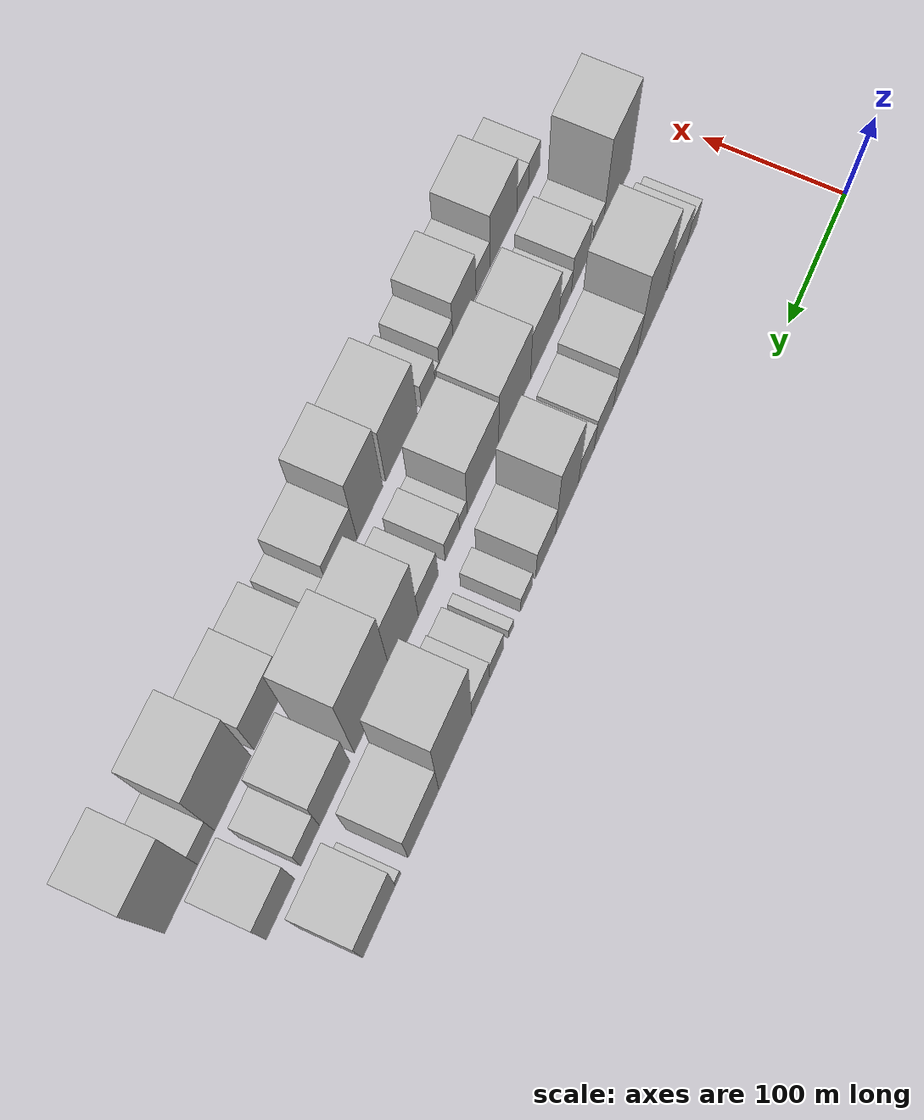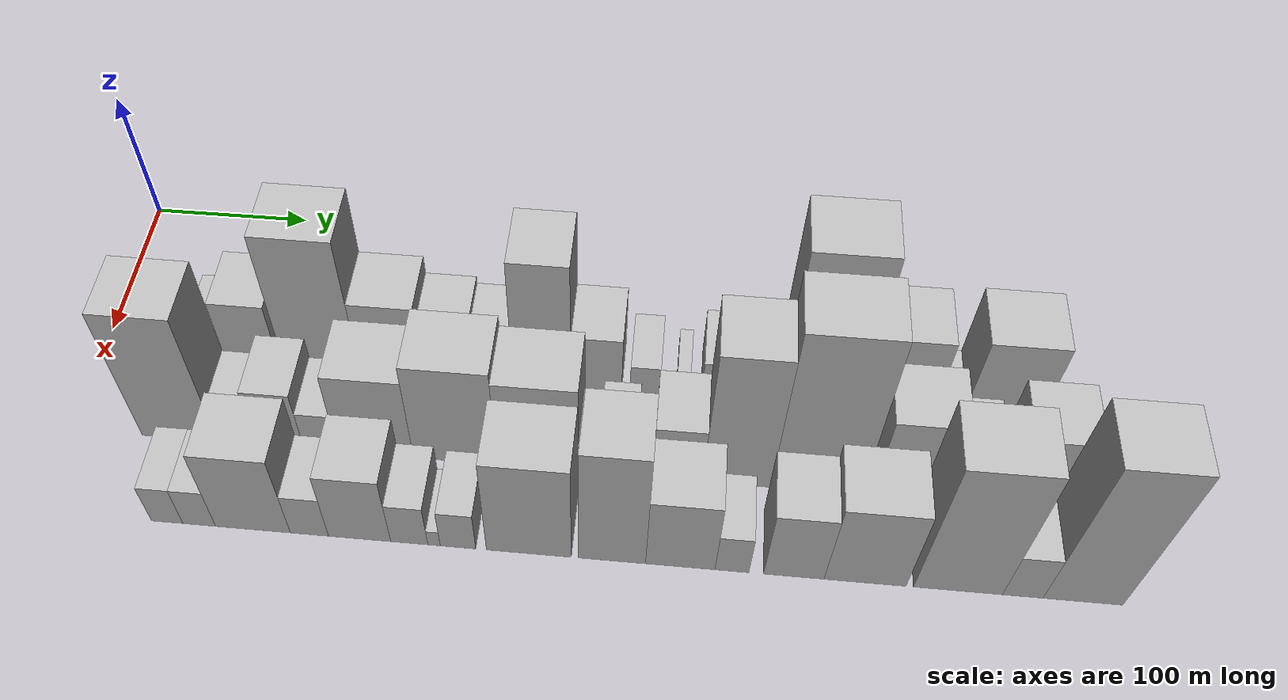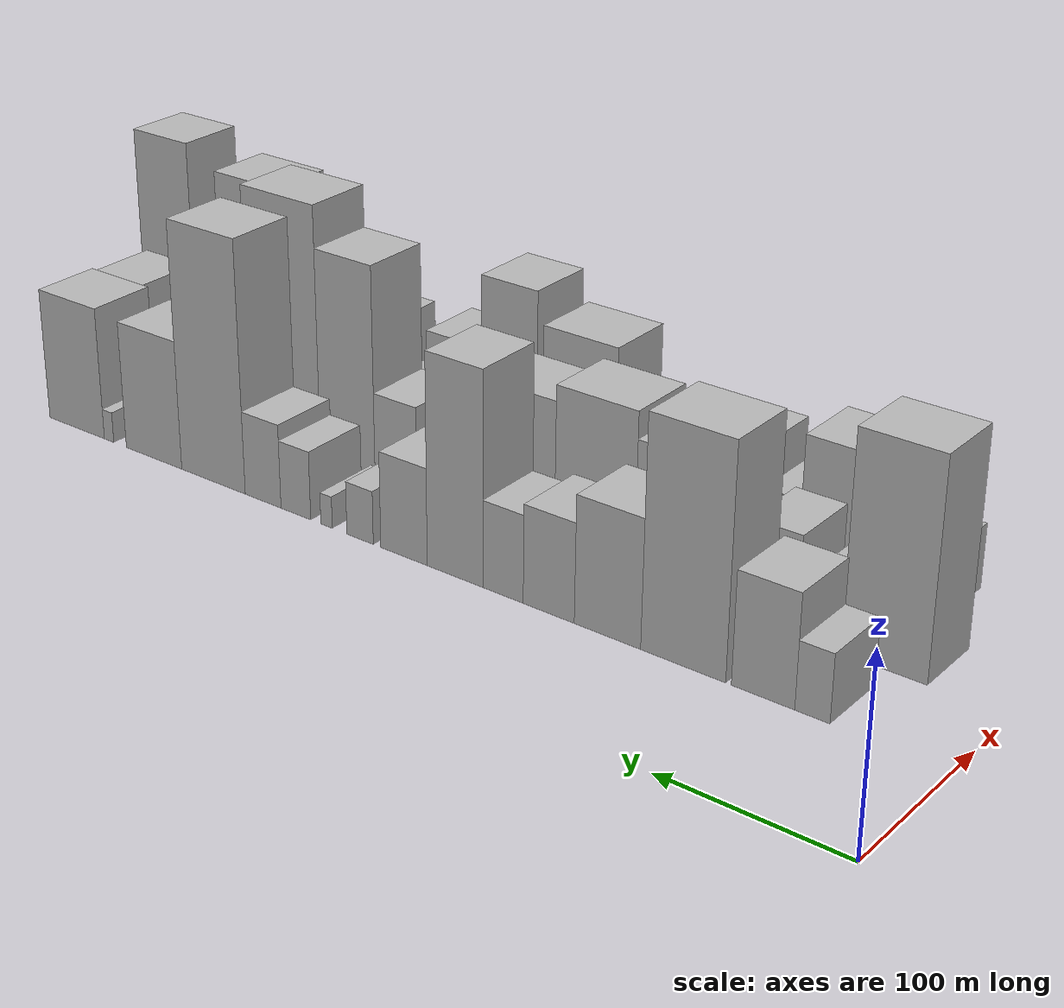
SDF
<sdf version="1.6">
 <world name="default">
  <model name="building_16">
   <static>1</static>
   <pose>100.0000 69.0831 0 0.000000 0.000000 0.000000</pose>
   <link name="link">
    <pose>0 0 18.00 0 0 0</pose>
    <collision name="collision"><geometry><box><size>40.0000 18.0495 36.0000</size></box></geometry></collision>
    <visual name="visual">
     <cast_shadows>0</cast_shadows>
     <geometry><box><size>40.0000 18.0495 36.0000</size></box></geometry>
     <material>
      <script>
       <uri>model://HANNAS_wall/materials/scripts</uri>
       <uri>model://HANNAS_wall/materials/textures</uri>
       <name>vrc/HANNAS_wall</name>
      </script>
     </material>
    </visual>
   </link>
  </model>
  <model name="building_17">
   <static>1</static>
   <pose>100.0000 94.7705 0 0.000000 0.000000 0.000000</pose>
   <link name="link">
    <pose>0 0 30.00 0 0 0</pose>
    <collision name="collision"><geometry><box><size>40.0000 33.3253 60.0000</size></box></geometry></collision>
    <visual name="visual">
     <cast_shadows>0</cast_shadows>
     <geometry><box><size>40.0000 33.3253 60.0000</size></box></geometry>
     <material>
      <script>
       <uri>model://HANNAS_wall/materials/scripts</uri>
       <uri>model://HANNAS_wall/materials/textures</uri>
       <name>vrc/HANNAS_wall</name>
      </script>
     </material>
    </visual>
   </link>
  </model>
  <model name="building_18">
   <static>1</static>
   <pose>100.0000 137.8663 0 0.000000 0.000000 0.000000</pose>
   <link name="link">
    <pose>0 0 61.50 0 0 0</pose>
    <collision name="collision"><geometry><box><size>40.0000 46.8662 123.0000</size></box></geometry></collision>
    <visual name="visual">
     <cast_shadows>0</cast_shadows>
     <geometry><box><size>40.0000 46.8662 123.0000</size></box></geometry>
     <material>
      <script>
       <uri>model://HANNAS_wall/materials/scripts</uri>
       <uri>model://HANNAS_wall/materials/textures</uri>
       <name>vrc/HANNAS_wall</name>
      </script>
     </material>
    </visual>
   </link>
  </model>
  <model name="building_19">
   <static>1</static>
   <pose>100.0000 180.4211 0 0.000000 0.000000 0.000000</pose>
   <link name="link">
    <pose>0 0 34.50 0 0 0</pose>
    <collision name="collision"><geometry><box><size>40.0000 38.2435 69.0000</size></box></geometry></collision>
    <visual name="visual">
     <cast_shadows>0</cast_shadows>
     <geometry><box><size>40.0000 38.2435 69.0000</size></box></geometry>
     <material>
      <script>
       <uri>model://HANNAS_wall/materials/scripts</uri>
       <uri>model://HANNAS_wall/materials/textures</uri>
       <name>vrc/HANNAS_wall</name>
      </script>
     </material>
    </visual>
   </link>
  </model>
  <model name="building_20">
   <static>1</static>
   <pose>100.0000 214.7776 0 0.000000 0.000000 0.000000</pose>
   <link name="link">
    <pose>0 0 27.00 0 0 0</pose>
    <collision name="collision"><geometry><box><size>40.0000 30.4695 54.0000</size></box></geometry></collision>
    <visual name="visual">
     <cast_shadows>0</cast_shadows>
     <geometry><box><size>40.0000 30.4695 54.0000</size></box></geometry>
     <material>
      <script>
       <uri>model://HANNAS_wall/materials/scripts</uri>
       <uri>model://HANNAS_wall/materials/textures</uri>
       <name>vrc/HANNAS_wall</name>
      </script>
     </material>
    </visual>
   </link>
  </model>
  <model name="building_21">
   <static>1</static>
   <pose>100.0000 242.4147 0 0.000000 0.000000 0.000000</pose>
   <link name="link">
    <pose>0 0 24.00 0 0 0</pose>
    <collision name="collision"><geometry><box><size>40.0000 24.8045 48.0000</size></box></geometry></collision>
    <visual name="visual">
     <cast_shadows>0</cast_shadows>
     <geometry><box><size>40.0000 24.8045 48.0000</size></box></geometry>
     <material>
      <script>
       <uri>model://HANNAS_wall/materials/scripts</uri>
       <uri>model://HANNAS_wall/materials/textures</uri>
       <name>vrc/HANNAS_wall</name>
      </script>
     </material>
    </visual>
   </link>
  </model>
  <model name="building_22">
   <static>1</static>
   <pose>100.0000 272.4213 0 0.000000 0.000000 0.000000</pose>
   <link name="link">
    <pose>0 0 58.50 0 0 0</pose>
    <collision name="collision"><geometry><box><size>40.0000 35.2088 117.0000</size></box></geometry></collision>
    <visual name="visual">
     <cast_shadows>0</cast_shadows>
     <geometry><box><size>40.0000 35.2088 117.0000</size></box></geometry>
     <material>
      <script>
       <uri>model://HANNAS_wall/materials/scripts</uri>
       <uri>model://HANNAS_wall/materials/textures</uri>
       <name>vrc/HANNAS_wall</name>
      </script>
     </material>
    </visual>
   </link>
  </model>
  <model name="building_23">
   <static>1</static>
   <pose>100.0000 305.1932 0 0.000000 0.000000 0.000000</pose>
   <link name="link">
    <pose>0 0 27.00 0 0 0</pose>
    <collision name="collision"><geometry><box><size>40.0000 30.3350 54.0000</size></box></geometry></collision>
    <visual name="visual">
     <cast_shadows>0</cast_shadows>
     <geometry><box><size>40.0000 30.3350 54.0000</size></box></geometry>
     <material>
      <script>
       <uri>model://HANNAS_wall/materials/scripts</uri>
       <uri>model://HANNAS_wall/materials/textures</uri>
       <name>vrc/HANNAS_wall</name>
      </script>
     </material>
    </visual>
   </link>
  </model>
  <model name="building_24">
   <static>1</static>
   <pose>100.0000 334.2420 0 0.000000 0.000000 0.000000</pose>
   <link name="link">
    <pose>0 0 15.00 0 0 0</pose>
    <collision name="collision"><geometry><box><size>40.0000 17.7624 30.0000</size></box></geometry></collision>
    <visual name="visual">
     <cast_shadows>0</cast_shadows>
     <geometry><box><size>40.0000 17.7624 30.0000</size></box></geometry>
     <material>
      <script>
       <uri>model://HANNAS_wall/materials/scripts</uri>
       <uri>model://HANNAS_wall/materials/textures</uri>
       <name>vrc/HANNAS_wall</name>
      </script>
     </material>
    </visual>
   </link>
  </model>
  <model name="building_25">
   <static>1</static>
   <pose>100.0000 357.0527 0 0.000000 0.000000 0.000000</pose>
   <link name="link">
    <pose>0 0 9.00 0 0 0</pose>
    <collision name="collision"><geometry><box><size>40.0000 7.8591 18.0000</size></box></geometry></collision>
    <visual name="visual">
     <cast_shadows>0</cast_shadows>
     <geometry><box><size>40.0000 7.8591 18.0000</size></box></geometry>
     <material>
      <script>
       <uri>model://HANNAS_wall/materials/scripts</uri>
       <uri>model://HANNAS_wall/materials/textures</uri>
       <name>vrc/HANNAS_wall</name>
      </script>
     </material>
    </visual>
   </link>
  </model>
  <model name="building_26">
   <static>1</static>
   <pose>100.0000 378.4067 0 0.000000 0.000000 0.000000</pose>
   <link name="link">
    <pose>0 0 19.50 0 0 0</pose>
    <collision name="collision"><geometry><box><size>40.0000 20.8488 39.0000</size></box></geometry></collision>
    <visual name="visual">
     <cast_shadows>0</cast_shadows>
     <geometry><box><size>40.0000 20.8488 39.0000</size></box></geometry>
     <material>
      <script>
       <uri>model://HANNAS_wall/materials/scripts</uri>
       <uri>model://HANNAS_wall/materials/textures</uri>
       <name>vrc/HANNAS_wall</name>
      </script>
     </material>
    </visual>
   </link>
  </model>
  <model name="building_27">
   <static>1</static>
   <pose>100.0000 401.6631 0 0.000000 0.000000 0.000000</pose>
   <link name="link">
    <pose>0 0 24.00 0 0 0</pose>
    <collision name="collision"><geometry><box><size>40.0000 25.6641 48.0000</size></box></geometry></collision>
    <visual name="visual">
     <cast_shadows>0</cast_shadows>
     <geometry><box><size>40.0000 25.6641 48.0000</size></box></geometry>
     <material>
      <script>
       <uri>model://HANNAS_wall/materials/scripts</uri>
       <uri>model://HANNAS_wall/materials/textures</uri>
       <name>vrc/HANNAS_wall</name>
      </script>
     </material>
    </visual>
   </link>
  </model>
  <model name="building_28">
   <static>1</static>
   <pose>100.0000 438.0764 0 0.000000 0.000000 0.000000</pose>
   <link name="link">
    <pose>0 0 72.00 0 0 0</pose>
    <collision name="collision"><geometry><box><size>40.0000 47.1625 144.0000</size></box></geometry></collision>
    <visual name="visual">
     <cast_shadows>0</cast_shadows>
     <geometry><box><size>40.0000 47.1625 144.0000</size></box></geometry>
     <material>
      <script>
       <uri>model://HANNAS_wall/materials/scripts</uri>
       <uri>model://HANNAS_wall/materials/textures</uri>
       <name>vrc/HANNAS_wall</name>
      </script>
     </material>
    </visual>
   </link>
  </model>
  <model name="building_29">
   <static>1</static>
   <pose>100.0000 483.0915 0 0.000000 0.000000 0.000000</pose>
   <link name="link">
    <pose>0 0 37.50 0 0 0</pose>
    <collision name="collision"><geometry><box><size>40.0000 42.8678 75.0000</size></box></geometry></collision>
    <visual name="visual">
     <cast_shadows>0</cast_shadows>
     <geometry><box><size>40.0000 42.8678 75.0000</size></box></geometry>
     <material>
      <script>
       <uri>model://HANNAS_wall/materials/scripts</uri>
       <uri>model://HANNAS_wall/materials/textures</uri>
       <name>vrc/HANNAS_wall</name>
      </script>
     </material>
    </visual>
   </link>
  </model>
  <model name="building_30">
   <static>1</static>
   <pose>100.0000 518.2733 0 0.000000 0.000000 0.000000</pose>
   <link name="link">
    <pose>0 0 9.00 0 0 0</pose>
    <collision name="collision"><geometry><box><size>40.0000 7.4957 18.0000</size></box></geometry></collision>
    <visual name="visual">
     <cast_shadows>0</cast_shadows>
     <geometry><box><size>40.0000 7.4957 18.0000</size></box></geometry>
     <material>
      <script>
       <uri>model://HANNAS_wall/materials/scripts</uri>
       <uri>model://HANNAS_wall/materials/textures</uri>
       <name>vrc/HANNAS_wall</name>
      </script>
     </material>
    </visual>
   </link>
  </model>
  <model name="building_31">
   <static>1</static>
   <pose>100.0000 544.2316 0 0.000000 0.000000 0.000000</pose>
   <link name="link">
    <pose>0 0 39.00 0 0 0</pose>
    <collision name="collision"><geometry><box><size>40.0000 44.4210 78.0000</size></box></geometry></collision>
    <visual name="visual">
     <cast_shadows>0</cast_shadows>
     <geometry><box><size>40.0000 44.4210 78.0000</size></box></geometry>
     <material>
      <script>
       <uri>model://HANNAS_wall/materials/scripts</uri>
       <uri>model://HANNAS_wall/materials/textures</uri>
       <name>vrc/HANNAS_wall</name>
      </script>
     </material>
    </visual>
   </link>
  </model>
  <model name="building_46">
   <static>1</static>
   <pose>155.0000 64.1442 0 0.000000 0.000000 0.000000</pose>
   <link name="link">
    <pose>0 0 58.50 0 0 0</pose>
    <collision name="collision"><geometry><box><size>40.0000 45.3029 117.0000</size></box></geometry></collision>
    <visual name="visual">
     <cast_shadows>0</cast_shadows>
     <geometry><box><size>40.0000 45.3029 117.0000</size></box></geometry>
     <material>
      <script>
       <uri>model://HANNAS_wall/materials/scripts</uri>
       <uri>model://HANNAS_wall/materials/textures</uri>
       <name>vrc/HANNAS_wall</name>
      </script>
     </material>
    </visual>
   </link>
  </model>
  <model name="building_47">
   <static>1</static>
   <pose>155.0000 95.9252 0 0.000000 0.000000 0.000000</pose>
   <link name="link">
    <pose>0 0 18.00 0 0 0</pose>
    <collision name="collision"><geometry><box><size>40.0000 18.2590 36.0000</size></box></geometry></collision>
    <visual name="visual">
     <cast_shadows>0</cast_shadows>
     <geometry><box><size>40.0000 18.2590 36.0000</size></box></geometry>
     <material>
      <script>
       <uri>model://HANNAS_wall/materials/scripts</uri>
       <uri>model://HANNAS_wall/materials/textures</uri>
       <name>vrc/HANNAS_wall</name>
      </script>
     </material>
    </visual>
   </link>
  </model>
  <model name="building_48">
   <static>1</static>
   <pose>155.0000 124.2762 0 0.000000 0.000000 0.000000</pose>
   <link name="link">
    <pose>0 0 27.00 0 0 0</pose>
    <collision name="collision"><geometry><box><size>40.0000 28.4430 54.0000</size></box></geometry></collision>
    <visual name="visual">
     <cast_shadows>0</cast_shadows>
     <geometry><box><size>40.0000 28.4430 54.0000</size></box></geometry>
     <material>
      <script>
       <uri>model://HANNAS_wall/materials/scripts</uri>
       <uri>model://HANNAS_wall/materials/textures</uri>
       <name>vrc/HANNAS_wall</name>
      </script>
     </material>
    </visual>
   </link>
  </model>
  <model name="building_49">
   <static>1</static>
   <pose>155.0000 148.5472 0 0.000000 0.000000 0.000000</pose>
   <link name="link">
    <pose>0 0 18.00 0 0 0</pose>
    <collision name="collision"><geometry><box><size>40.0000 20.0991 36.0000</size></box></geometry></collision>
    <visual name="visual">
     <cast_shadows>0</cast_shadows>
     <geometry><box><size>40.0000 20.0991 36.0000</size></box></geometry>
     <material>
      <script>
       <uri>model://HANNAS_wall/materials/scripts</uri>
       <uri>model://HANNAS_wall/materials/textures</uri>
       <name>vrc/HANNAS_wall</name>
      </script>
     </material>
    </visual>
   </link>
  </model>
  <model name="building_50">
   <static>1</static>
   <pose>155.0000 180.9674 0 0.000000 0.000000 0.000000</pose>
   <link name="link">
    <pose>0 0 37.50 0 0 0</pose>
    <collision name="collision"><geometry><box><size>40.0000 44.7412 75.0000</size></box></geometry></collision>
    <visual name="visual">
     <cast_shadows>0</cast_shadows>
     <geometry><box><size>40.0000 44.7412 75.0000</size></box></geometry>
     <material>
      <script>
       <uri>model://HANNAS_wall/materials/scripts</uri>
       <uri>model://HANNAS_wall/materials/textures</uri>
       <name>vrc/HANNAS_wall</name>
      </script>
     </material>
    </visual>
   </link>
  </model>
  <model name="building_51">
   <static>1</static>
   <pose>155.0000 227.7921 0 0.000000 0.000000 0.000000</pose>
   <link name="link">
    <pose>0 0 45.00 0 0 0</pose>
    <collision name="collision"><geometry><box><size>40.0000 48.9083 90.0000</size></box></geometry></collision>
    <visual name="visual">
     <cast_shadows>0</cast_shadows>
     <geometry><box><size>40.0000 48.9083 90.0000</size></box></geometry>
     <material>
      <script>
       <uri>model://HANNAS_wall/materials/scripts</uri>
       <uri>model://HANNAS_wall/materials/textures</uri>
       <name>vrc/HANNAS_wall</name>
      </script>
     </material>
    </visual>
   </link>
  </model>
  <model name="building_52">
   <static>1</static>
   <pose>155.0000 276.0466 0 0.000000 0.000000 0.000000</pose>
   <link name="link">
    <pose>0 0 40.50 0 0 0</pose>
    <collision name="collision"><geometry><box><size>40.0000 47.6007 81.0000</size></box></geometry></collision>
    <visual name="visual">
     <cast_shadows>0</cast_shadows>
     <geometry><box><size>40.0000 47.6007 81.0000</size></box></geometry>
     <material>
      <script>
       <uri>model://HANNAS_wall/materials/scripts</uri>
       <uri>model://HANNAS_wall/materials/textures</uri>
       <name>vrc/HANNAS_wall</name>
      </script>
     </material>
    </visual>
   </link>
  </model>
  <model name="building_53">
   <static>1</static>
   <pose>155.0000 305.6166 0 0.000000 0.000000 0.000000</pose>
   <link name="link">
    <pose>0 0 13.50 0 0 0</pose>
    <collision name="collision"><geometry><box><size>40.0000 11.5393 27.0000</size></box></geometry></collision>
    <visual name="visual">
     <cast_shadows>0</cast_shadows>
     <geometry><box><size>40.0000 11.5393 27.0000</size></box></geometry>
     <material>
      <script>
       <uri>model://HANNAS_wall/materials/scripts</uri>
       <uri>model://HANNAS_wall/materials/textures</uri>
       <name>vrc/HANNAS_wall</name>
      </script>
     </material>
    </visual>
   </link>
  </model>
  <model name="building_54">
   <static>1</static>
   <pose>155.0000 321.9952 0 0.000000 0.000000 0.000000</pose>
   <link name="link">
    <pose>0 0 18.00 0 0 0</pose>
    <collision name="collision"><geometry><box><size>40.0000 21.2179 36.0000</size></box></geometry></collision>
    <visual name="visual">
     <cast_shadows>0</cast_shadows>
     <geometry><box><size>40.0000 21.2179 36.0000</size></box></geometry>
     <material>
      <script>
       <uri>model://HANNAS_wall/materials/scripts</uri>
       <uri>model://HANNAS_wall/materials/textures</uri>
       <name>vrc/HANNAS_wall</name>
      </script>
     </material>
    </visual>
   </link>
  </model>
  <model name="building_55">
   <static>1</static>
   <pose>155.0000 357.0089 0 0.000000 0.000000 0.000000</pose>
   <link name="link">
    <pose>0 0 25.50 0 0 0</pose>
    <collision name="collision"><geometry><box><size>40.0000 28.8095 51.0000</size></box></geometry></collision>
    <visual name="visual">
     <cast_shadows>0</cast_shadows>
     <geometry><box><size>40.0000 28.8095 51.0000</size></box></geometry>
     <material>
      <script>
       <uri>model://HANNAS_wall/materials/scripts</uri>
       <uri>model://HANNAS_wall/materials/textures</uri>
       <name>vrc/HANNAS_wall</name>
      </script>
     </material>
    </visual>
   </link>
  </model>
  <model name="building_56">
   <static>1</static>
   <pose>155.0000 390.9139 0 0.000000 0.000000 0.000000</pose>
   <link name="link">
    <pose>0 0 61.50 0 0 0</pose>
    <collision name="collision"><geometry><box><size>40.0000 39.0005 123.0000</size></box></geometry></collision>
    <visual name="visual">
     <cast_shadows>0</cast_shadows>
     <geometry><box><size>40.0000 39.0005 123.0000</size></box></geometry>
     <material>
      <script>
       <uri>model://HANNAS_wall/materials/scripts</uri>
       <uri>model://HANNAS_wall/materials/textures</uri>
       <name>vrc/HANNAS_wall</name>
      </script>
     </material>
    </visual>
   </link>
  </model>
  <model name="building_57">
   <static>1</static>
   <pose>155.0000 436.1925 0 0.000000 0.000000 0.000000</pose>
   <link name="link">
    <pose>0 0 73.50 0 0 0</pose>
    <collision name="collision"><geometry><box><size>40.0000 51.5567 147.0000</size></box></geometry></collision>
    <visual name="visual">
     <cast_shadows>0</cast_shadows>
     <geometry><box><size>40.0000 51.5567 147.0000</size></box></geometry>
     <material>
      <script>
       <uri>model://HANNAS_wall/materials/scripts</uri>
       <uri>model://HANNAS_wall/materials/textures</uri>
       <name>vrc/HANNAS_wall</name>
      </script>
     </material>
    </visual>
   </link>
  </model>
  <model name="building_58">
   <static>1</static>
   <pose>155.0000 488.4916 0 0.000000 0.000000 0.000000</pose>
   <link name="link">
    <pose>0 0 37.50 0 0 0</pose>
    <collision name="collision"><geometry><box><size>40.0000 41.0415 75.0000</size></box></geometry></collision>
    <visual name="visual">
     <cast_shadows>0</cast_shadows>
     <geometry><box><size>40.0000 41.0415 75.0000</size></box></geometry>
     <material>
      <script>
       <uri>model://HANNAS_wall/materials/scripts</uri>
       <uri>model://HANNAS_wall/materials/textures</uri>
       <name>vrc/HANNAS_wall</name>
      </script>
     </material>
    </visual>
   </link>
  </model>
  <model name="building_59">
   <static>1</static>
   <pose>155.0000 521.6747 0 0.000000 0.000000 0.000000</pose>
   <link name="link">
    <pose>0 0 24.00 0 0 0</pose>
    <collision name="collision"><geometry><box><size>40.0000 25.3245 48.0000</size></box></geometry></collision>
    <visual name="visual">
     <cast_shadows>0</cast_shadows>
     <geometry><box><size>40.0000 25.3245 48.0000</size></box></geometry>
     <material>
      <script>
       <uri>model://HANNAS_wall/materials/scripts</uri>
       <uri>model://HANNAS_wall/materials/textures</uri>
       <name>vrc/HANNAS_wall</name>
      </script>
     </material>
    </visual>
   </link>
  </model>
  <model name="building_60">
   <static>1</static>
   <pose>155.0000 561.1233 0 0.000000 0.000000 0.000000</pose>
   <link name="link">
    <pose>0 0 34.50 0 0 0</pose>
    <collision name="collision"><geometry><box><size>40.0000 37.5728 69.0000</size></box></geometry></collision>
    <visual name="visual">
     <cast_shadows>0</cast_shadows>
     <geometry><box><size>40.0000 37.5728 69.0000</size></box></geometry>
     <material>
      <script>
       <uri>model://HANNAS_wall/materials/scripts</uri>
       <uri>model://HANNAS_wall/materials/textures</uri>
       <name>vrc/HANNAS_wall</name>
      </script>
     </material>
    </visual>
   </link>
  </model>
  <model name="building_79">
   <static>1</static>
   <pose>210.0000 72.5582 0 0.000000 0.000000 0.000000</pose>
   <link name="link">
    <pose>0 0 18.00 0 0 0</pose>
    <collision name="collision"><geometry><box><size>40.0000 18.1257 36.0000</size></box></geometry></collision>
    <visual name="visual">
     <cast_shadows>0</cast_shadows>
     <geometry><box><size>40.0000 18.1257 36.0000</size></box></geometry>
     <material>
      <script>
       <uri>model://HANNAS_wall/materials/scripts</uri>
       <uri>model://HANNAS_wall/materials/textures</uri>
       <name>vrc/HANNAS_wall</name>
      </script>
     </material>
    </visual>
   </link>
  </model>
  <model name="building_80">
   <static>1</static>
   <pose>210.0000 90.9927 0 0.000000 0.000000 0.000000</pose>
   <link name="link">
    <pose>0 0 18.00 0 0 0</pose>
    <collision name="collision"><geometry><box><size>40.0000 18.7432 36.0000</size></box></geometry></collision>
    <visual name="visual">
     <cast_shadows>0</cast_shadows>
     <geometry><box><size>40.0000 18.7432 36.0000</size></box></geometry>
     <material>
      <script>
       <uri>model://HANNAS_wall/materials/scripts</uri>
       <uri>model://HANNAS_wall/materials/textures</uri>
       <name>vrc/HANNAS_wall</name>
      </script>
     </material>
    </visual>
   </link>
  </model>
  <model name="building_81">
   <static>1</static>
   <pose>210.0000 121.7398 0 0.000000 0.000000 0.000000</pose>
   <link name="link">
    <pose>0 0 37.50 0 0 0</pose>
    <collision name="collision"><geometry><box><size>40.0000 42.7511 75.0000</size></box></geometry></collision>
    <visual name="visual">
     <cast_shadows>0</cast_shadows>
     <geometry><box><size>40.0000 42.7511 75.0000</size></box></geometry>
     <material>
      <script>
       <uri>model://HANNAS_wall/materials/scripts</uri>
       <uri>model://HANNAS_wall/materials/textures</uri>
       <name>vrc/HANNAS_wall</name>
      </script>
     </material>
    </visual>
   </link>
  </model>
  <model name="building_82">
   <static>1</static>
   <pose>210.0000 153.9491 0 0.000000 0.000000 0.000000</pose>
   <link name="link">
    <pose>0 0 19.50 0 0 0</pose>
    <collision name="collision"><geometry><box><size>40.0000 21.6674 39.0000</size></box></geometry></collision>
    <visual name="visual">
     <cast_shadows>0</cast_shadows>
     <geometry><box><size>40.0000 21.6674 39.0000</size></box></geometry>
     <material>
      <script>
       <uri>model://HANNAS_wall/materials/scripts</uri>
       <uri>model://HANNAS_wall/materials/textures</uri>
       <name>vrc/HANNAS_wall</name>
      </script>
     </material>
    </visual>
   </link>
  </model>
  <model name="building_83">
   <static>1</static>
   <pose>210.0000 182.4364 0 0.000000 0.000000 0.000000</pose>
   <link name="link">
    <pose>0 0 31.50 0 0 0</pose>
    <collision name="collision"><geometry><box><size>40.0000 35.3073 63.0000</size></box></geometry></collision>
    <visual name="visual">
     <cast_shadows>0</cast_shadows>
     <geometry><box><size>40.0000 35.3073 63.0000</size></box></geometry>
     <material>
      <script>
       <uri>model://HANNAS_wall/materials/scripts</uri>
       <uri>model://HANNAS_wall/materials/textures</uri>
       <name>vrc/HANNAS_wall</name>
      </script>
     </material>
    </visual>
   </link>
  </model>
  <model name="building_84">
   <static>1</static>
   <pose>210.0000 210.5371 0 0.000000 0.000000 0.000000</pose>
   <link name="link">
    <pose>0 0 19.50 0 0 0</pose>
    <collision name="collision"><geometry><box><size>40.0000 20.8941 39.0000</size></box></geometry></collision>
    <visual name="visual">
     <cast_shadows>0</cast_shadows>
     <geometry><box><size>40.0000 20.8941 39.0000</size></box></geometry>
     <material>
      <script>
       <uri>model://HANNAS_wall/materials/scripts</uri>
       <uri>model://HANNAS_wall/materials/textures</uri>
       <name>vrc/HANNAS_wall</name>
      </script>
     </material>
    </visual>
   </link>
  </model>
  <model name="building_85">
   <static>1</static>
   <pose>210.0000 224.4818 0 0.000000 0.000000 0.000000</pose>
   <link name="link">
    <pose>0 0 7.50 0 0 0</pose>
    <collision name="collision"><geometry><box><size>40.0000 6.9952 15.0000</size></box></geometry></collision>
    <visual name="visual">
     <cast_shadows>0</cast_shadows>
     <geometry><box><size>40.0000 6.9952 15.0000</size></box></geometry>
     <material>
      <script>
       <uri>model://HANNAS_wall/materials/scripts</uri>
       <uri>model://HANNAS_wall/materials/textures</uri>
       <name>vrc/HANNAS_wall</name>
      </script>
     </material>
    </visual>
   </link>
  </model>
  <model name="building_86">
   <static>1</static>
   <pose>210.0000 237.9366 0 0.000000 0.000000 0.000000</pose>
   <link name="link">
    <pose>0 0 18.00 0 0 0</pose>
    <collision name="collision"><geometry><box><size>40.0000 19.9146 36.0000</size></box></geometry></collision>
    <visual name="visual">
     <cast_shadows>0</cast_shadows>
     <geometry><box><size>40.0000 19.9146 36.0000</size></box></geometry>
     <material>
      <script>
       <uri>model://HANNAS_wall/materials/scripts</uri>
       <uri>model://HANNAS_wall/materials/textures</uri>
       <name>vrc/HANNAS_wall</name>
      </script>
     </material>
    </visual>
   </link>
  </model>
  <model name="building_87">
   <static>1</static>
   <pose>210.0000 277.5494 0 0.000000 0.000000 0.000000</pose>
   <link name="link">
    <pose>0 0 45.00 0 0 0</pose>
    <collision name="collision"><geometry><box><size>40.0000 47.3110 90.0000</size></box></geometry></collision>
    <visual name="visual">
     <cast_shadows>0</cast_shadows>
     <geometry><box><size>40.0000 47.3110 90.0000</size></box></geometry>
     <material>
      <script>
       <uri>model://HANNAS_wall/materials/scripts</uri>
       <uri>model://HANNAS_wall/materials/textures</uri>
       <name>vrc/HANNAS_wall</name>
      </script>
     </material>
    </visual>
   </link>
  </model>
  <model name="building_88">
   <static>1</static>
   <pose>210.0000 323.7427 0 0.000000 0.000000 0.000000</pose>
   <link name="link">
    <pose>0 0 54.00 0 0 0</pose>
    <collision name="collision"><geometry><box><size>40.0000 37.0755 108.0000</size></box></geometry></collision>
    <visual name="visual">
     <cast_shadows>0</cast_shadows>
     <geometry><box><size>40.0000 37.0755 108.0000</size></box></geometry>
     <material>
      <script>
       <uri>model://HANNAS_wall/materials/scripts</uri>
       <uri>model://HANNAS_wall/materials/textures</uri>
       <name>vrc/HANNAS_wall</name>
      </script>
     </material>
    </visual>
   </link>
  </model>
  <model name="building_89">
   <static>1</static>
   <pose>210.0000 361.4091 0 0.000000 0.000000 0.000000</pose>
   <link name="link">
    <pose>0 0 33.00 0 0 0</pose>
    <collision name="collision"><geometry><box><size>40.0000 38.2574 66.0000</size></box></geometry></collision>
    <visual name="visual">
     <cast_shadows>0</cast_shadows>
     <geometry><box><size>40.0000 38.2574 66.0000</size></box></geometry>
     <material>
      <script>
       <uri>model://HANNAS_wall/materials/scripts</uri>
       <uri>model://HANNAS_wall/materials/textures</uri>
       <name>vrc/HANNAS_wall</name>
      </script>
     </material>
    </visual>
   </link>
  </model>
  <model name="building_90">
   <static>1</static>
   <pose>210.0000 389.8409 0 0.000000 0.000000 0.000000</pose>
   <link name="link">
    <pose>0 0 18.00 0 0 0</pose>
    <collision name="collision"><geometry><box><size>40.0000 18.6060 36.0000</size></box></geometry></collision>
    <visual name="visual">
     <cast_shadows>0</cast_shadows>
     <geometry><box><size>40.0000 18.6060 36.0000</size></box></geometry>
     <material>
      <script>
       <uri>model://HANNAS_wall/materials/scripts</uri>
       <uri>model://HANNAS_wall/materials/textures</uri>
       <name>vrc/HANNAS_wall</name>
      </script>
     </material>
    </visual>
   </link>
  </model>
  <model name="building_91">
   <static>1</static>
   <pose>210.0000 423.6423 0 0.000000 0.000000 0.000000</pose>
   <link name="link">
    <pose>0 0 31.50 0 0 0</pose>
    <collision name="collision"><geometry><box><size>40.0000 32.9968 63.0000</size></box></geometry></collision>
    <visual name="visual">
     <cast_shadows>0</cast_shadows>
     <geometry><box><size>40.0000 32.9968 63.0000</size></box></geometry>
     <material>
      <script>
       <uri>model://HANNAS_wall/materials/scripts</uri>
       <uri>model://HANNAS_wall/materials/textures</uri>
       <name>vrc/HANNAS_wall</name>
      </script>
     </material>
    </visual>
   </link>
  </model>
  <model name="building_92">
   <static>1</static>
   <pose>210.0000 462.3777 0 0.000000 0.000000 0.000000</pose>
   <link name="link">
    <pose>0 0 37.50 0 0 0</pose>
    <collision name="collision"><geometry><box><size>40.0000 44.4741 75.0000</size></box></geometry></collision>
    <visual name="visual">
     <cast_shadows>0</cast_shadows>
     <geometry><box><size>40.0000 44.4741 75.0000</size></box></geometry>
     <material>
      <script>
       <uri>model://HANNAS_wall/materials/scripts</uri>
       <uri>model://HANNAS_wall/materials/textures</uri>
       <name>vrc/HANNAS_wall</name>
      </script>
     </material>
    </visual>
   </link>
  </model>
  <model name="building_93">
   <static>1</static>
   <pose>210.0000 512.5608 0 0.000000 0.000000 0.000000</pose>
   <link name="link">
    <pose>0 0 61.50 0 0 0</pose>
    <collision name="collision"><geometry><box><size>40.0000 47.8920 123.0000</size></box></geometry></collision>
    <visual name="visual">
     <cast_shadows>0</cast_shadows>
     <geometry><box><size>40.0000 47.8920 123.0000</size></box></geometry>
     <material>
      <script>
       <uri>model://HANNAS_wall/materials/scripts</uri>
       <uri>model://HANNAS_wall/materials/textures</uri>
       <name>vrc/HANNAS_wall</name>
      </script>
     </material>
    </visual>
   </link>
  </model>
  <model name="building_94">
   <static>1</static>
   <pose>210.0000 547.3230 0 0.000000 0.000000 0.000000</pose>
   <link name="link">
    <pose>0 0 21.00 0 0 0</pose>
    <collision name="collision"><geometry><box><size>40.0000 21.6325 42.0000</size></box></geometry></collision>
    <visual name="visual">
     <cast_shadows>0</cast_shadows>
     <geometry><box><size>40.0000 21.6325 42.0000</size></box></geometry>
     <material>
      <script>
       <uri>model://HANNAS_wall/materials/scripts</uri>
       <uri>model://HANNAS_wall/materials/textures</uri>
       <name>vrc/HANNAS_wall</name>
      </script>
     </material>
    </visual>
   </link>
  </model>
  <model name="building_95">
   <static>1</static>
   <pose>210.0000 579.4155 0 0.000000 0.000000 0.000000</pose>
   <link name="link">
    <pose>0 0 67.50 0 0 0</pose>
    <collision name="collision"><geometry><box><size>40.0000 42.5524 135.0000</size></box></geometry></collision>
    <visual name="visual">
     <cast_shadows>0</cast_shadows>
     <geometry><box><size>40.0000 42.5524 135.0000</size></box></geometry>
     <material>
      <script>
       <uri>model://HANNAS_wall/materials/scripts</uri>
       <uri>model://HANNAS_wall/materials/textures</uri>
       <name>vrc/HANNAS_wall</name>
      </script>
     </material>
    </visual>
   </link>
  </model>
 </world>
</sdf>
